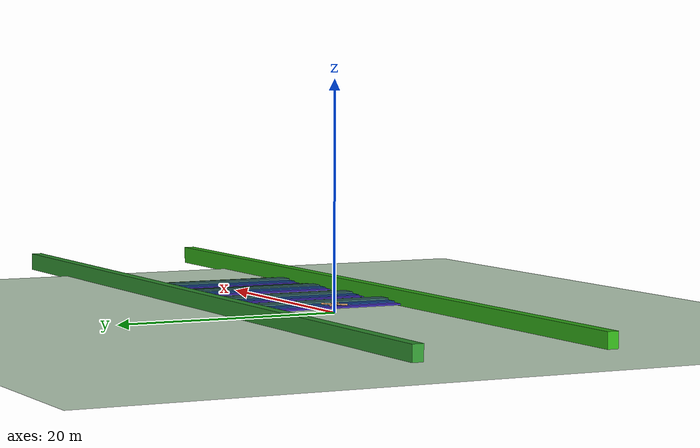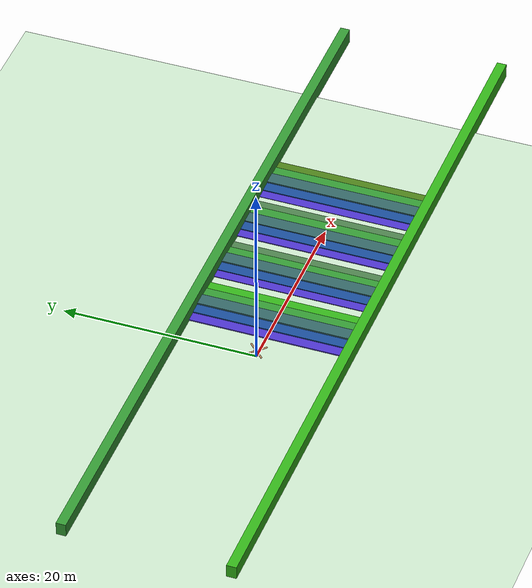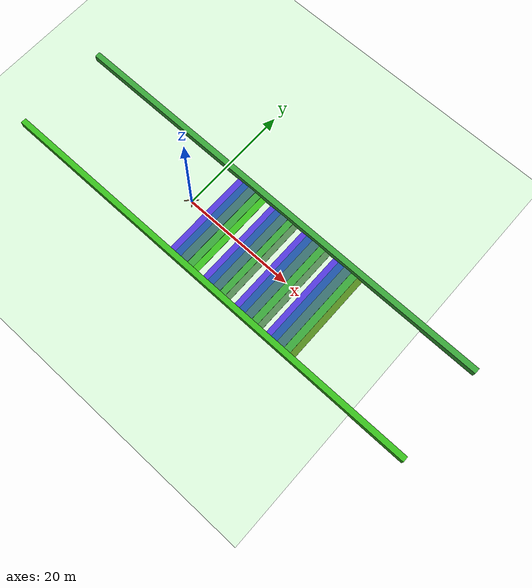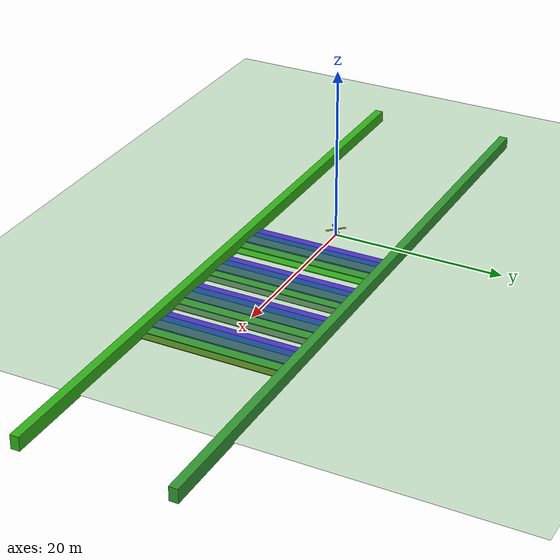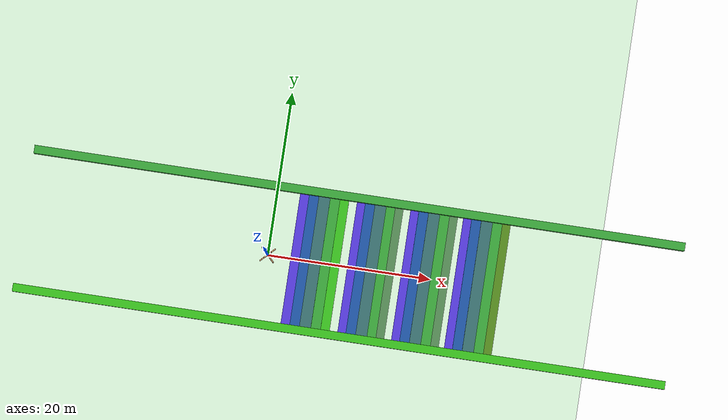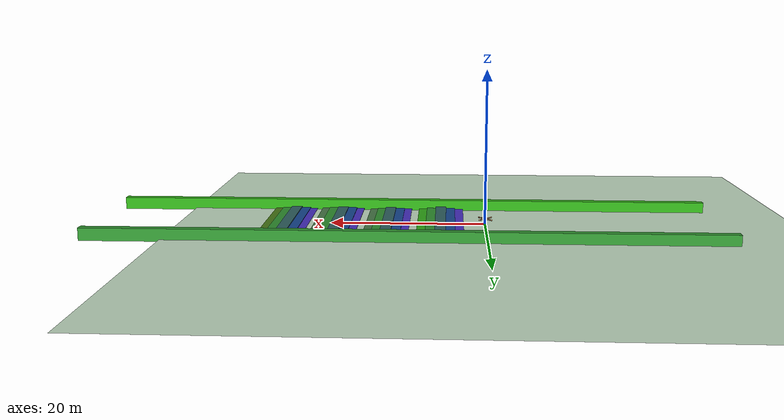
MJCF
<mujoco model="ant">
  <compiler angle="degree" coordinate="local" inertiafromgeom="true"/>
  <option integrator="RK4" timestep="0.01"/>
  <custom>
    <numeric data="0.0 0.0 0.55 1.0 0.0 0.0 0.0 0.0 1.0 0.0 -1.0 0.0 -1.0 0.0 1.0" name="init_qpos"/>
  </custom>
  <default>
    <joint armature="1" damping="1" limited="true"/>
    <geom conaffinity="0" condim="3" density="5.0" friction="1 0.5 0.5" margin="0.01" rgba="0.8 0.6 0.4 1"/>
  </default>
  <asset>
    <texture builtin="gradient" height="100" rgb1="1 1 1" rgb2="0 0 0" type="skybox" width="100"/>
    <texture builtin="flat" height="1278" mark="cross" markrgb="1 1 1" name="texgeom" random="0.01" rgb1="0.8 0.6 0.4" rgb2="0.8 0.6 0.4" type="cube" width="127"/>
    <texture builtin="checker" height="100" name="texplane" rgb1="0 0 0" rgb2="0.8 0.8 0.8" type="2d" width="100"/>
    <material name="MatPlane" reflectance="0.5" shininess="1" specular="1" texrepeat="60 60" texture="texplane"/>
    <material name="geom" texture="texgeom" texuniform="true"/>
  </asset>
  <worldbody>
    <light cutoff="100" diffuse="1 1 1" dir="-0 0 -1.3" directional="true" exponent="1" pos="0 0 1.3" specular=".1 .1 .1"/>
    <geom conaffinity="1" condim="3" material="MatPlane" name="floor" pos="0 0 0" rgba="0.8 0.9 0.8 1" size="40 40 40" type="plane"/>

    <geom name="block0" type="box" pos="3.5 0 0.06" size="0.7 8 0.06" rgba="0.3 0.2 0.8 1" contype="1" conaffinity="1" density="0"/>
    <geom name="block1" type="box" pos="4.6 0 0.18" size="0.7 8 0.06" rgba="0.1 0.3 0.6 1" contype="1" conaffinity="1" density="0"/>
    <geom name="block2" type="box" pos="5.8 0 0.32" size="0.7 8 0.08" rgba="0.2 0.4 0.4 1" contype="1" conaffinity="1" density="0"/>
    <geom name="block3" type="box" pos="7.0 0 0.18" size="0.7 8 0.06" rgba="0.2 0.6 0.2 1" contype="1" conaffinity="1" density="0"/>
    <geom name="block4" type="box" pos="8.1 0 0.06" size="0.7 8 0.06" rgba="0.2 0.7 0.1 1" contype="1" conaffinity="1" density="0"/>

    <geom name="block5" type="box" pos="10.5 0 0.04" size="0.7 8 0.04" rgba="0.3 0.2 0.8 1" contype="1" conaffinity="1" density="0"/>
    <geom name="block6" type="box" pos="11.5 0 0.12" size="0.7 8 0.04" rgba="0.1 0.3 0.6 1" contype="1" conaffinity="1" density="0"/>
    <geom name="block7" type="box" pos="12.7 0 0.23" size="0.7 8 0.07" rgba="0.2 0.4 0.4 1" contype="1" conaffinity="1" density="0"/>
    <geom name="block8" type="box" pos="13.8 0 0.11" size="0.7 8 0.05" rgba="0.2 0.6 0.2 1" contype="1" conaffinity="1" density="0"/>
    <geom name="block9" type="box" pos="14.8 0 0.03" size="0.7 8 0.03" rgba="0.3 0.5 0.3 1" contype="1" conaffinity="1" density="0"/>

    <geom name="block10" type="box" pos="17.1 0 0.05" size="0.7 8 0.05" rgba="0.3 0.2 0.8 1" contype="1" conaffinity="1" density="0"/>
    <geom name="block11" type="box" pos="18.1 0 0.15" size="0.7 8 0.05" rgba="0.1 0.3 0.6 1" contype="1" conaffinity="1" density="0"/>
    <geom name="block12" type="box" pos="19.3 0 0.25" size="0.7 8 0.05" rgba="0.2 0.4 0.4 1" contype="1" conaffinity="1" density="0"/>
    <geom name="block13" type="box" pos="20.5 0 0.15" size="0.7 8 0.05" rgba="0.2 0.6 0.2 1" contype="1" conaffinity="1" density="0"/>
    <geom name="block14" type="box" pos="21.5 0 0.05" size="0.7 8 0.05" rgba="0.3 0.5 0.3 1" contype="1" conaffinity="1" density="0"/>

    <geom name="block15" type="box" pos="23.6 0 0.03" size="0.7 8 0.03" rgba="0.3 0.2 0.8 1" contype="1" conaffinity="1" density="0"/>
    <geom name="block16" type="box" pos="24.6 0 0.11" size="0.7 8 0.05" rgba="0.1 0.3 0.6 1" contype="1" conaffinity="1" density="0"/>
    <geom name="block17" type="box" pos="25.8 0 0.23" size="0.7 8 0.07" rgba="0.2 0.4 0.4 1" contype="1" conaffinity="1" density="0"/>
    <geom name="block18" type="box" pos="27.0 0 0.12" size="0.7 8 0.04" rgba="0.2 0.6 0.2 1" contype="1" conaffinity="1" density="0"/>
    <geom name="block19" type="box" pos="28.0 0 0.04" size="0.7 8 0.04" rgba="0.3 0.5 0.1 1" contype="1" conaffinity="1" density="0"/>

    <geom name="WallTop" type="box" pos="10.0 8.5 0.5" size="40 0.5 0.8" rgba="0.2 0.6 0.2 1" contype="1" conaffinity="1" density="0"/>
    <geom name="WallBot" type="box" pos="10.0 -8.5 0.5" size="40 0.5 0.8" rgba="0.2 0.7 0.1 1" contype="1" conaffinity="1" density="0"/>

    <body name="torso" pos="0 0 0.75">
      <camera name="track" mode="trackcom" pos="0.5 -4 0.5" xyaxes="1 0 0 0 0.05 1"/>

      <geom name="torso_geom" pos="0 0 0" size="0.25" type="sphere"/>
      <joint armature="0" damping="0" limited="false" margin="0.01" name="root" pos="0 0 0" type="free"/>

      <body name="front_left_leg" pos="0 0 0">
        <geom fromto="0.0 0.0 0.0 0.2 0.2 0.0" name="aux_1_geom" size="0.08" type="capsule"/>
        <body name="aux_1" pos="0.2 0.2 0">
          <joint axis="0 0 1" name="hip_1" pos="0.0 0.0 0.0" range="-30 30" type="hinge"/>
          <geom fromto="0.0 0.0 0.0 0.2 0.2 0.0" name="left_leg_geom" size="0.08" type="capsule"/>
          <body pos="0.2 0.2 0">
            <joint axis="-1 1 0" name="ankle_1" pos="0.0 0.0 0.0" range="30 70" type="hinge"/>
            <geom fromto="0.0 0.0 0.0 0.4 0.4 0.0" name="left_ankle_geom" size="0.08" type="capsule"/>
          </body>
        </body>
      </body>
      <body name="front_right_leg" pos="0 0 0">
        <geom fromto="0.0 0.0 0.0 -0.2 0.2 0.0" name="aux_2_geom" size="0.08" type="capsule"/>
        <body name="aux_2" pos="-0.2 0.2 0">
          <joint axis="0 0 1" name="hip_2" pos="0.0 0.0 0.0" range="-30 30" type="hinge"/>
          <geom fromto="0.0 0.0 0.0 -0.2 0.2 0.0" name="right_leg_geom" size="0.08" type="capsule"/>
          <body pos="-0.2 0.2 0">
            <joint axis="1 1 0" name="ankle_2" pos="0.0 0.0 0.0" range="-70 -30" type="hinge"/>
            <geom fromto="0.0 0.0 0.0 -0.4 0.4 0.0" name="right_ankle_geom" size="0.08" type="capsule"/>
          </body>
        </body>
      </body>
      <body name="back_leg" pos="0 0 0">
        <geom fromto="0.0 0.0 0.0 -0.2 -0.2 0.0" name="aux_3_geom" size="0.08" type="capsule"/>
        <body name="aux_3" pos="-0.2 -0.2 0">
          <joint axis="0 0 1" name="hip_3" pos="0.0 0.0 0.0" range="-30 30" type="hinge"/>
          <geom fromto="0.0 0.0 0.0 -0.2 -0.2 0.0" name="back_leg_geom" size="0.08" type="capsule"/>
          <body pos="-0.2 -0.2 0">
            <joint axis="-1 1 0" name="ankle_3" pos="0.0 0.0 0.0" range="-70 -30" type="hinge"/>
            <geom fromto="0.0 0.0 0.0 -0.4 -0.4 0.0" name="third_ankle_geom" size="0.08" type="capsule"/>
          </body>
        </body>
      </body>
      <body name="right_back_leg" pos="0 0 0">
        <geom fromto="0.0 0.0 0.0 0.2 -0.2 0.0" name="aux_4_geom" size="0.08" type="capsule"/>
        <body name="aux_4" pos="0.2 -0.2 0">
          <joint axis="0 0 1" name="hip_4" pos="0.0 0.0 0.0" range="-30 30" type="hinge"/>
          <geom fromto="0.0 0.0 0.0 0.2 -0.2 0.0" name="rightback_leg_geom" size="0.08" type="capsule"/>
          <body pos="0.2 -0.2 0">
            <joint axis="1 1 0" name="ankle_4" pos="0.0 0.0 0.0" range="30 70" type="hinge"/>
            <geom fromto="0.0 0.0 0.0 0.4 -0.4 0.0" name="fourth_ankle_geom" size="0.08" type="capsule"/>
          </body>
        </body>
      </body>
    </body>
  </worldbody>
  <actuator>
    <motor ctrllimited="true" ctrlrange="-1.0 1.0" joint="hip_4" gear="150"/>
    <motor ctrllimited="true" ctrlrange="-1.0 1.0" joint="ankle_4" gear="150"/>
    <motor ctrllimited="true" ctrlrange="-1.0 1.0" joint="hip_1" gear="150"/>
    <motor ctrllimited="true" ctrlrange="-1.0 1.0" joint="ankle_1" gear="150"/>
    <motor ctrllimited="true" ctrlrange="-1.0 1.0" joint="hip_2" gear="150"/>
    <motor ctrllimited="true" ctrlrange="-1.0 1.0" joint="ankle_2" gear="150"/>
    <motor ctrllimited="true" ctrlrange="-1.0 1.0" joint="hip_3" gear="150"/>
    <motor ctrllimited="true" ctrlrange="-1.0 1.0" joint="ankle_3" gear="150"/>
  </actuator>
</mujoco>
